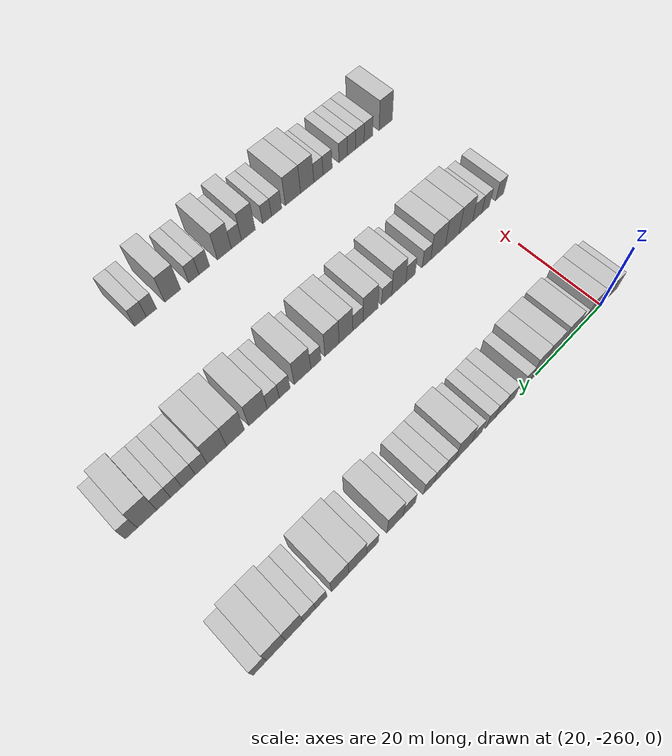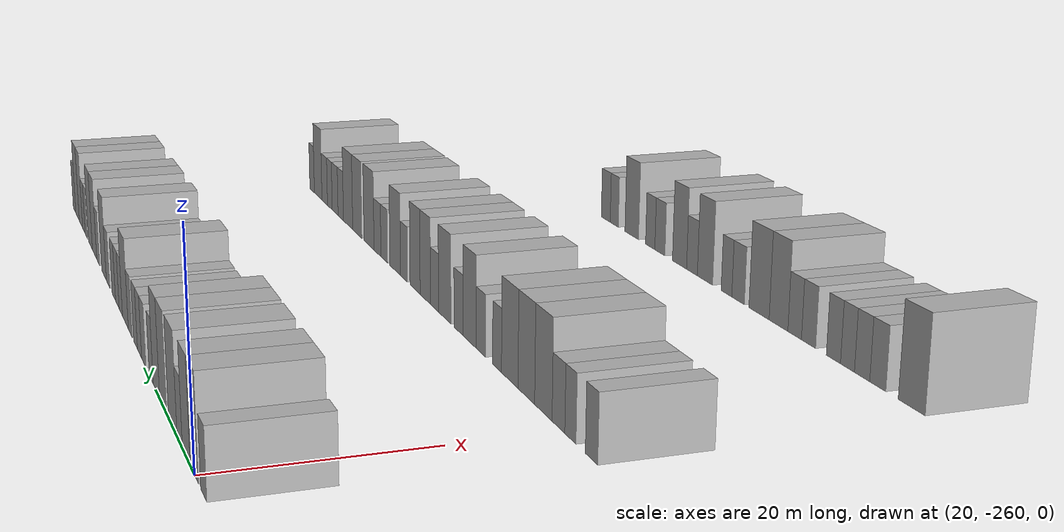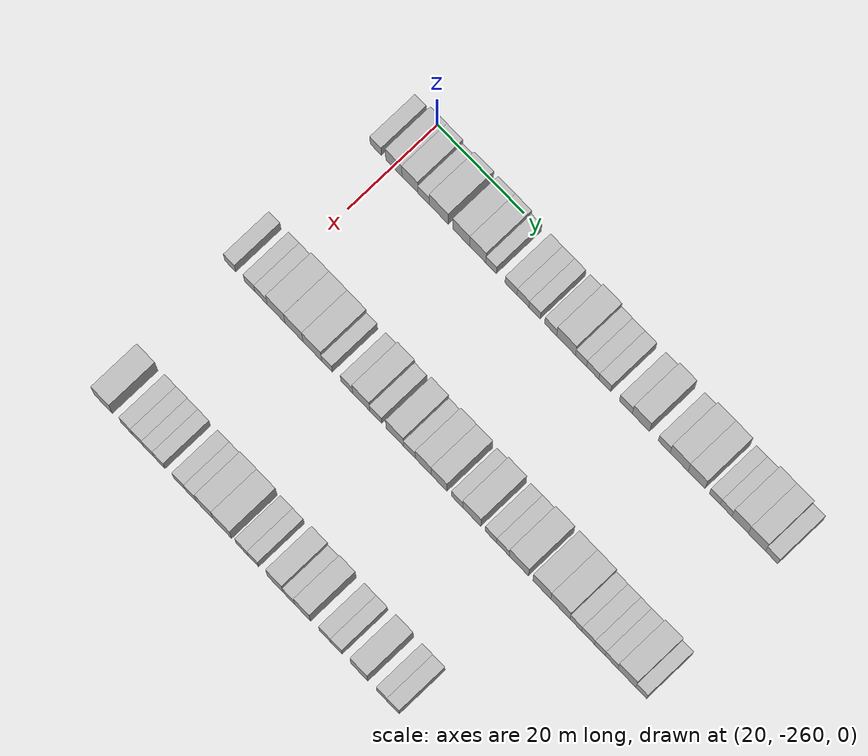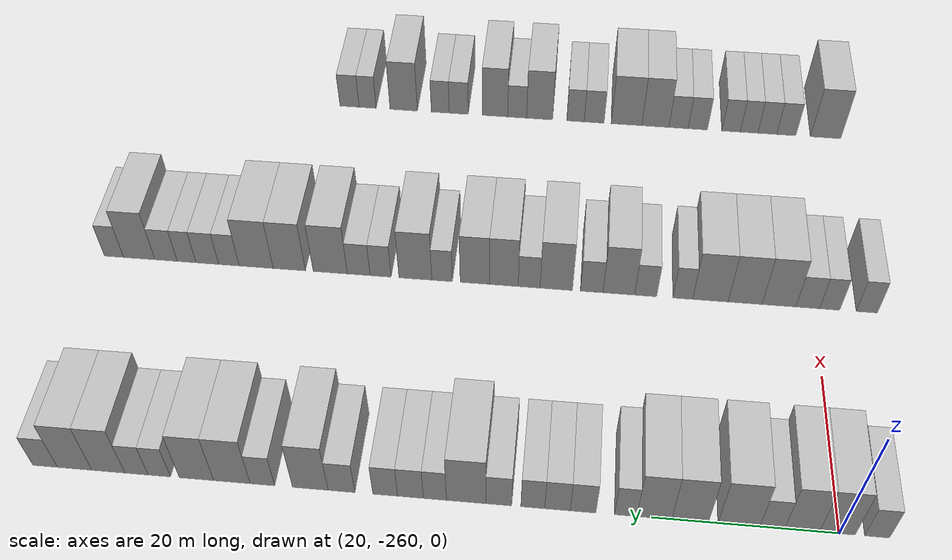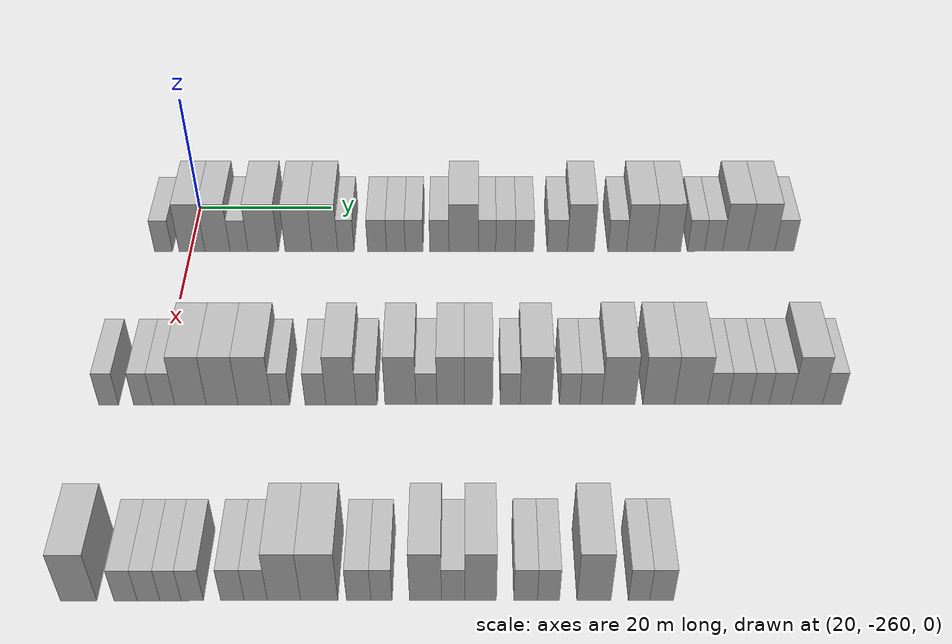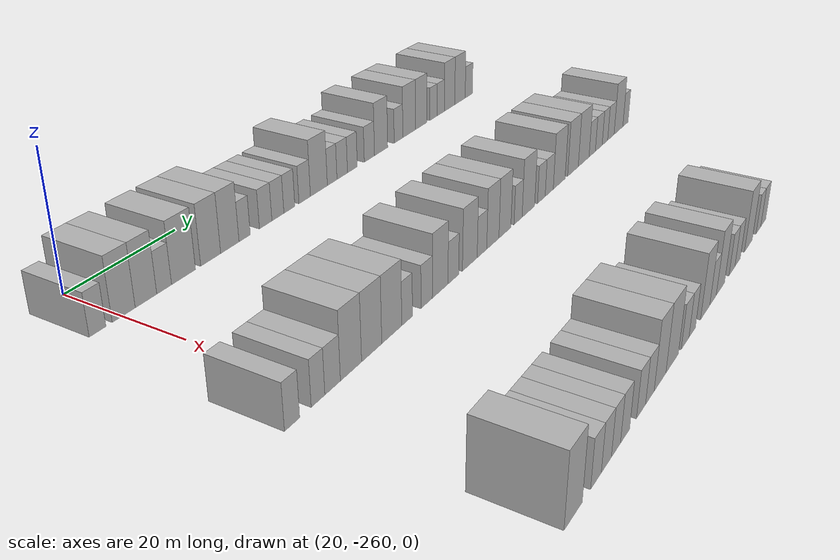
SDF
<sdf version="1.6">
 <world name="default">
  <model name="building_50">
   <static>1</static>
   <pose>25.0000 -263.9552 0 0.000000 0.000000 0.000000</pose>
   <link name="link">
    <pose>0 0 3.00 0 0 0</pose>
    <collision name="collision"><geometry><box><size>10.0000 2.6250 6.0000</size></box></geometry></collision>
    <visual name="visual">
     <cast_shadows>0</cast_shadows>
     <geometry><box><size>10.0000 2.6250 6.0000</size></box></geometry>
     <material>
      <script>
       <uri>model://HANNAS_wall/materials/scripts</uri>
       <uri>model://HANNAS_wall/materials/textures</uri>
       <name>vrc/HANNAS_wall</name>
      </script>
     </material>
    </visual>
   </link>
  </model>
  <model name="building_51">
   <static>1</static>
   <pose>25.0000 -259.7512 0 0.000000 0.000000 0.000000</pose>
   <link name="link">
    <pose>0 0 4.50 0 0 0</pose>
    <collision name="collision"><geometry><box><size>10.0000 3.7831 9.0000</size></box></geometry></collision>
    <visual name="visual">
     <cast_shadows>0</cast_shadows>
     <geometry><box><size>10.0000 3.7831 9.0000</size></box></geometry>
     <material>
      <script>
       <uri>model://HANNAS_wall/materials/scripts</uri>
       <uri>model://HANNAS_wall/materials/textures</uri>
       <name>vrc/HANNAS_wall</name>
      </script>
     </material>
    </visual>
   </link>
  </model>
  <model name="building_52">
   <static>1</static>
   <pose>25.0000 -256.0086 0 0.000000 0.000000 0.000000</pose>
   <link name="link">
    <pose>0 0 4.50 0 0 0</pose>
    <collision name="collision"><geometry><box><size>10.0000 3.7020 9.0000</size></box></geometry></collision>
    <visual name="visual">
     <cast_shadows>0</cast_shadows>
     <geometry><box><size>10.0000 3.7020 9.0000</size></box></geometry>
     <material>
      <script>
       <uri>model://HANNAS_wall/materials/scripts</uri>
       <uri>model://HANNAS_wall/materials/textures</uri>
       <name>vrc/HANNAS_wall</name>
      </script>
     </material>
    </visual>
   </link>
  </model>
  <model name="building_53">
   <static>1</static>
   <pose>25.0000 -252.8353 0 0.000000 0.000000 0.000000</pose>
   <link name="link">
    <pose>0 0 3.00 0 0 0</pose>
    <collision name="collision"><geometry><box><size>10.0000 2.6446 6.0000</size></box></geometry></collision>
    <visual name="visual">
     <cast_shadows>0</cast_shadows>
     <geometry><box><size>10.0000 2.6446 6.0000</size></box></geometry>
     <material>
      <script>
       <uri>model://HANNAS_wall/materials/scripts</uri>
       <uri>model://HANNAS_wall/materials/textures</uri>
       <name>vrc/HANNAS_wall</name>
      </script>
     </material>
    </visual>
   </link>
  </model>
  <model name="building_54">
   <static>1</static>
   <pose>25.0000 -249.2851 0 0.000000 0.000000 0.000000</pose>
   <link name="link">
    <pose>0 0 4.50 0 0 0</pose>
    <collision name="collision"><geometry><box><size>10.0000 4.4559 9.0000</size></box></geometry></collision>
    <visual name="visual">
     <cast_shadows>0</cast_shadows>
     <geometry><box><size>10.0000 4.4559 9.0000</size></box></geometry>
     <material>
      <script>
       <uri>model://HANNAS_wall/materials/scripts</uri>
       <uri>model://HANNAS_wall/materials/textures</uri>
       <name>vrc/HANNAS_wall</name>
      </script>
     </material>
    </visual>
   </link>
  </model>
  <model name="building_55">
   <static>1</static>
   <pose>25.0000 -244.0844 0 0.000000 0.000000 0.000000</pose>
   <link name="link">
    <pose>0 0 4.50 0 0 0</pose>
    <collision name="collision"><geometry><box><size>10.0000 3.9455 9.0000</size></box></geometry></collision>
    <visual name="visual">
     <cast_shadows>0</cast_shadows>
     <geometry><box><size>10.0000 3.9455 9.0000</size></box></geometry>
     <material>
      <script>
       <uri>model://HANNAS_wall/materials/scripts</uri>
       <uri>model://HANNAS_wall/materials/textures</uri>
       <name>vrc/HANNAS_wall</name>
      </script>
     </material>
    </visual>
   </link>
  </model>
  <model name="building_56">
   <static>1</static>
   <pose>25.0000 -240.2194 0 0.000000 0.000000 0.000000</pose>
   <link name="link">
    <pose>0 0 4.50 0 0 0</pose>
    <collision name="collision"><geometry><box><size>10.0000 3.7845 9.0000</size></box></geometry></collision>
    <visual name="visual">
     <cast_shadows>0</cast_shadows>
     <geometry><box><size>10.0000 3.7845 9.0000</size></box></geometry>
     <material>
      <script>
       <uri>model://HANNAS_wall/materials/scripts</uri>
       <uri>model://HANNAS_wall/materials/textures</uri>
       <name>vrc/HANNAS_wall</name>
      </script>
     </material>
    </visual>
   </link>
  </model>
  <model name="building_57">
   <static>1</static>
   <pose>25.0000 -237.1265 0 0.000000 0.000000 0.000000</pose>
   <link name="link">
    <pose>0 0 3.00 0 0 0</pose>
    <collision name="collision"><geometry><box><size>10.0000 2.4014 6.0000</size></box></geometry></collision>
    <visual name="visual">
     <cast_shadows>0</cast_shadows>
     <geometry><box><size>10.0000 2.4014 6.0000</size></box></geometry>
     <material>
      <script>
       <uri>model://HANNAS_wall/materials/scripts</uri>
       <uri>model://HANNAS_wall/materials/textures</uri>
       <name>vrc/HANNAS_wall</name>
      </script>
     </material>
    </visual>
   </link>
  </model>
  <model name="building_58">
   <static>1</static>
   <pose>25.0000 -232.5295 0 0.000000 0.000000 0.000000</pose>
   <link name="link">
    <pose>0 0 3.00 0 0 0</pose>
    <collision name="collision"><geometry><box><size>10.0000 2.7925 6.0000</size></box></geometry></collision>
    <visual name="visual">
     <cast_shadows>0</cast_shadows>
     <geometry><box><size>10.0000 2.7925 6.0000</size></box></geometry>
     <material>
      <script>
       <uri>model://HANNAS_wall/materials/scripts</uri>
       <uri>model://HANNAS_wall/materials/textures</uri>
       <name>vrc/HANNAS_wall</name>
      </script>
     </material>
    </visual>
   </link>
  </model>
  <model name="building_59">
   <static>1</static>
   <pose>25.0000 -229.7505 0 0.000000 0.000000 0.000000</pose>
   <link name="link">
    <pose>0 0 3.00 0 0 0</pose>
    <collision name="collision"><geometry><box><size>10.0000 2.7655 6.0000</size></box></geometry></collision>
    <visual name="visual">
     <cast_shadows>0</cast_shadows>
     <geometry><box><size>10.0000 2.7655 6.0000</size></box></geometry>
     <material>
      <script>
       <uri>model://HANNAS_wall/materials/scripts</uri>
       <uri>model://HANNAS_wall/materials/textures</uri>
       <name>vrc/HANNAS_wall</name>
      </script>
     </material>
    </visual>
   </link>
  </model>
  <model name="building_60">
   <static>1</static>
   <pose>25.0000 -227.0693 0 0.000000 0.000000 0.000000</pose>
   <link name="link">
    <pose>0 0 3.00 0 0 0</pose>
    <collision name="collision"><geometry><box><size>10.0000 2.5969 6.0000</size></box></geometry></collision>
    <visual name="visual">
     <cast_shadows>0</cast_shadows>
     <geometry><box><size>10.0000 2.5969 6.0000</size></box></geometry>
     <material>
      <script>
       <uri>model://HANNAS_wall/materials/scripts</uri>
       <uri>model://HANNAS_wall/materials/textures</uri>
       <name>vrc/HANNAS_wall</name>
      </script>
     </material>
    </visual>
   </link>
  </model>
  <model name="building_61">
   <static>1</static>
   <pose>25.0000 -223.3637 0 0.000000 0.000000 0.000000</pose>
   <link name="link">
    <pose>0 0 3.00 0 0 0</pose>
    <collision name="collision"><geometry><box><size>10.0000 2.8145 6.0000</size></box></geometry></collision>
    <visual name="visual">
     <cast_shadows>0</cast_shadows>
     <geometry><box><size>10.0000 2.8145 6.0000</size></box></geometry>
     <material>
      <script>
       <uri>model://HANNAS_wall/materials/scripts</uri>
       <uri>model://HANNAS_wall/materials/textures</uri>
       <name>vrc/HANNAS_wall</name>
      </script>
     </material>
    </visual>
   </link>
  </model>
  <model name="building_62">
   <static>1</static>
   <pose>25.0000 -219.7949 0 0.000000 0.000000 0.000000</pose>
   <link name="link">
    <pose>0 0 4.50 0 0 0</pose>
    <collision name="collision"><geometry><box><size>10.0000 4.3231 9.0000</size></box></geometry></collision>
    <visual name="visual">
     <cast_shadows>0</cast_shadows>
     <geometry><box><size>10.0000 4.3231 9.0000</size></box></geometry>
     <material>
      <script>
       <uri>model://HANNAS_wall/materials/scripts</uri>
       <uri>model://HANNAS_wall/materials/textures</uri>
       <name>vrc/HANNAS_wall</name>
      </script>
     </material>
    </visual>
   </link>
  </model>
  <model name="building_63">
   <static>1</static>
   <pose>25.0000 -216.3594 0 0.000000 0.000000 0.000000</pose>
   <link name="link">
    <pose>0 0 3.00 0 0 0</pose>
    <collision name="collision"><geometry><box><size>10.0000 2.5478 6.0000</size></box></geometry></collision>
    <visual name="visual">
     <cast_shadows>0</cast_shadows>
     <geometry><box><size>10.0000 2.5478 6.0000</size></box></geometry>
     <material>
      <script>
       <uri>model://HANNAS_wall/materials/scripts</uri>
       <uri>model://HANNAS_wall/materials/textures</uri>
       <name>vrc/HANNAS_wall</name>
      </script>
     </material>
    </visual>
   </link>
  </model>
  <model name="building_64">
   <static>1</static>
   <pose>25.0000 -213.6650 0 0.000000 0.000000 0.000000</pose>
   <link name="link">
    <pose>0 0 3.00 0 0 0</pose>
    <collision name="collision"><geometry><box><size>10.0000 2.8410 6.0000</size></box></geometry></collision>
    <visual name="visual">
     <cast_shadows>0</cast_shadows>
     <geometry><box><size>10.0000 2.8410 6.0000</size></box></geometry>
     <material>
      <script>
       <uri>model://HANNAS_wall/materials/scripts</uri>
       <uri>model://HANNAS_wall/materials/textures</uri>
       <name>vrc/HANNAS_wall</name>
      </script>
     </material>
    </visual>
   </link>
  </model>
  <model name="building_65">
   <static>1</static>
   <pose>25.0000 -210.8804 0 0.000000 0.000000 0.000000</pose>
   <link name="link">
    <pose>0 0 3.00 0 0 0</pose>
    <collision name="collision"><geometry><box><size>10.0000 2.7284 6.0000</size></box></geometry></collision>
    <visual name="visual">
     <cast_shadows>0</cast_shadows>
     <geometry><box><size>10.0000 2.7284 6.0000</size></box></geometry>
     <material>
      <script>
       <uri>model://HANNAS_wall/materials/scripts</uri>
       <uri>model://HANNAS_wall/materials/textures</uri>
       <name>vrc/HANNAS_wall</name>
      </script>
     </material>
    </visual>
   </link>
  </model>
  <model name="building_66">
   <static>1</static>
   <pose>25.0000 -206.0302 0 0.000000 0.000000 0.000000</pose>
   <link name="link">
    <pose>0 0 3.00 0 0 0</pose>
    <collision name="collision"><geometry><box><size>10.0000 2.9719 6.0000</size></box></geometry></collision>
    <visual name="visual">
     <cast_shadows>0</cast_shadows>
     <geometry><box><size>10.0000 2.9719 6.0000</size></box></geometry>
     <material>
      <script>
       <uri>model://HANNAS_wall/materials/scripts</uri>
       <uri>model://HANNAS_wall/materials/textures</uri>
       <name>vrc/HANNAS_wall</name>
      </script>
     </material>
    </visual>
   </link>
  </model>
  <model name="building_67">
   <static>1</static>
   <pose>25.0000 -202.5640 0 0.000000 0.000000 0.000000</pose>
   <link name="link">
    <pose>0 0 4.50 0 0 0</pose>
    <collision name="collision"><geometry><box><size>10.0000 3.9606 9.0000</size></box></geometry></collision>
    <visual name="visual">
     <cast_shadows>0</cast_shadows>
     <geometry><box><size>10.0000 3.9606 9.0000</size></box></geometry>
     <material>
      <script>
       <uri>model://HANNAS_wall/materials/scripts</uri>
       <uri>model://HANNAS_wall/materials/textures</uri>
       <name>vrc/HANNAS_wall</name>
      </script>
     </material>
    </visual>
   </link>
  </model>
  <model name="building_68">
   <static>1</static>
   <pose>25.0000 -197.2149 0 0.000000 0.000000 0.000000</pose>
   <link name="link">
    <pose>0 0 3.00 0 0 0</pose>
    <collision name="collision"><geometry><box><size>10.0000 2.7376 6.0000</size></box></geometry></collision>
    <visual name="visual">
     <cast_shadows>0</cast_shadows>
     <geometry><box><size>10.0000 2.7376 6.0000</size></box></geometry>
     <material>
      <script>
       <uri>model://HANNAS_wall/materials/scripts</uri>
       <uri>model://HANNAS_wall/materials/textures</uri>
       <name>vrc/HANNAS_wall</name>
      </script>
     </material>
    </visual>
   </link>
  </model>
  <model name="building_69">
   <static>1</static>
   <pose>25.0000 -193.7944 0 0.000000 0.000000 0.000000</pose>
   <link name="link">
    <pose>0 0 4.50 0 0 0</pose>
    <collision name="collision"><geometry><box><size>10.0000 4.1033 9.0000</size></box></geometry></collision>
    <visual name="visual">
     <cast_shadows>0</cast_shadows>
     <geometry><box><size>10.0000 4.1033 9.0000</size></box></geometry>
     <material>
      <script>
       <uri>model://HANNAS_wall/materials/scripts</uri>
       <uri>model://HANNAS_wall/materials/textures</uri>
       <name>vrc/HANNAS_wall</name>
      </script>
     </material>
    </visual>
   </link>
  </model>
  <model name="building_70">
   <static>1</static>
   <pose>25.0000 -189.8073 0 0.000000 0.000000 0.000000</pose>
   <link name="link">
    <pose>0 0 4.50 0 0 0</pose>
    <collision name="collision"><geometry><box><size>10.0000 3.8709 9.0000</size></box></geometry></collision>
    <visual name="visual">
     <cast_shadows>0</cast_shadows>
     <geometry><box><size>10.0000 3.8709 9.0000</size></box></geometry>
     <material>
      <script>
       <uri>model://HANNAS_wall/materials/scripts</uri>
       <uri>model://HANNAS_wall/materials/textures</uri>
       <name>vrc/HANNAS_wall</name>
      </script>
     </material>
    </visual>
   </link>
  </model>
  <model name="building_71">
   <static>1</static>
   <pose>25.0000 -185.6113 0 0.000000 0.000000 0.000000</pose>
   <link name="link">
    <pose>0 0 3.00 0 0 0</pose>
    <collision name="collision"><geometry><box><size>10.0000 2.5211 6.0000</size></box></geometry></collision>
    <visual name="visual">
     <cast_shadows>0</cast_shadows>
     <geometry><box><size>10.0000 2.5211 6.0000</size></box></geometry>
     <material>
      <script>
       <uri>model://HANNAS_wall/materials/scripts</uri>
       <uri>model://HANNAS_wall/materials/textures</uri>
       <name>vrc/HANNAS_wall</name>
      </script>
     </material>
    </visual>
   </link>
  </model>
  <model name="building_72">
   <static>1</static>
   <pose>25.0000 -183.0315 0 0.000000 0.000000 0.000000</pose>
   <link name="link">
    <pose>0 0 3.00 0 0 0</pose>
    <collision name="collision"><geometry><box><size>10.0000 2.6385 6.0000</size></box></geometry></collision>
    <visual name="visual">
     <cast_shadows>0</cast_shadows>
     <geometry><box><size>10.0000 2.6385 6.0000</size></box></geometry>
     <material>
      <script>
       <uri>model://HANNAS_wall/materials/scripts</uri>
       <uri>model://HANNAS_wall/materials/textures</uri>
       <name>vrc/HANNAS_wall</name>
      </script>
     </material>
    </visual>
   </link>
  </model>
  <model name="building_73">
   <static>1</static>
   <pose>25.0000 -179.8330 0 0.000000 0.000000 0.000000</pose>
   <link name="link">
    <pose>0 0 4.50 0 0 0</pose>
    <collision name="collision"><geometry><box><size>10.0000 3.7586 9.0000</size></box></geometry></collision>
    <visual name="visual">
     <cast_shadows>0</cast_shadows>
     <geometry><box><size>10.0000 3.7586 9.0000</size></box></geometry>
     <material>
      <script>
       <uri>model://HANNAS_wall/materials/scripts</uri>
       <uri>model://HANNAS_wall/materials/textures</uri>
       <name>vrc/HANNAS_wall</name>
      </script>
     </material>
    </visual>
   </link>
  </model>
  <model name="building_74">
   <static>1</static>
   <pose>25.0000 -175.9824 0 0.000000 0.000000 0.000000</pose>
   <link name="link">
    <pose>0 0 4.50 0 0 0</pose>
    <collision name="collision"><geometry><box><size>10.0000 3.9426 9.0000</size></box></geometry></collision>
    <visual name="visual">
     <cast_shadows>0</cast_shadows>
     <geometry><box><size>10.0000 3.9426 9.0000</size></box></geometry>
     <material>
      <script>
       <uri>model://HANNAS_wall/materials/scripts</uri>
       <uri>model://HANNAS_wall/materials/textures</uri>
       <name>vrc/HANNAS_wall</name>
      </script>
     </material>
    </visual>
   </link>
  </model>
  <model name="building_75">
   <static>1</static>
   <pose>25.0000 -172.6080 0 0.000000 0.000000 0.000000</pose>
   <link name="link">
    <pose>0 0 3.00 0 0 0</pose>
    <collision name="collision"><geometry><box><size>10.0000 2.8060 6.0000</size></box></geometry></collision>
    <visual name="visual">
     <cast_shadows>0</cast_shadows>
     <geometry><box><size>10.0000 2.8060 6.0000</size></box></geometry>
     <material>
      <script>
       <uri>model://HANNAS_wall/materials/scripts</uri>
       <uri>model://HANNAS_wall/materials/textures</uri>
       <name>vrc/HANNAS_wall</name>
      </script>
     </material>
    </visual>
   </link>
  </model>
  <model name="building_285">
   <static>1</static>
   <pose>55.0000 -266.2791 0 0.000000 0.000000 0.000000</pose>
   <link name="link">
    <pose>0 0 3.00 0 0 0</pose>
    <collision name="collision"><geometry><box><size>10.0000 2.5727 6.0000</size></box></geometry></collision>
    <visual name="visual">
     <cast_shadows>0</cast_shadows>
     <geometry><box><size>10.0000 2.5727 6.0000</size></box></geometry>
     <material>
      <script>
       <uri>model://HANNAS_wall/materials/scripts</uri>
       <uri>model://HANNAS_wall/materials/textures</uri>
       <name>vrc/HANNAS_wall</name>
      </script>
     </material>
    </visual>
   </link>
  </model>
  <model name="building_286">
   <static>1</static>
   <pose>55.0000 -261.7659 0 0.000000 0.000000 0.000000</pose>
   <link name="link">
    <pose>0 0 3.00 0 0 0</pose>
    <collision name="collision"><geometry><box><size>10.0000 2.4538 6.0000</size></box></geometry></collision>
    <visual name="visual">
     <cast_shadows>0</cast_shadows>
     <geometry><box><size>10.0000 2.4538 6.0000</size></box></geometry>
     <material>
      <script>
       <uri>model://HANNAS_wall/materials/scripts</uri>
       <uri>model://HANNAS_wall/materials/textures</uri>
       <name>vrc/HANNAS_wall</name>
      </script>
     </material>
    </visual>
   </link>
  </model>
  <model name="building_287">
   <static>1</static>
   <pose>55.0000 -259.0863 0 0.000000 0.000000 0.000000</pose>
   <link name="link">
    <pose>0 0 3.00 0 0 0</pose>
    <collision name="collision"><geometry><box><size>10.0000 2.9054 6.0000</size></box></geometry></collision>
    <visual name="visual">
     <cast_shadows>0</cast_shadows>
     <geometry><box><size>10.0000 2.9054 6.0000</size></box></geometry>
     <material>
      <script>
       <uri>model://HANNAS_wall/materials/scripts</uri>
       <uri>model://HANNAS_wall/materials/textures</uri>
       <name>vrc/HANNAS_wall</name>
      </script>
     </material>
    </visual>
   </link>
  </model>
  <model name="building_288">
   <static>1</static>
   <pose>55.0000 -255.5618 0 0.000000 0.000000 0.000000</pose>
   <link name="link">
    <pose>0 0 4.50 0 0 0</pose>
    <collision name="collision"><geometry><box><size>10.0000 4.1436 9.0000</size></box></geometry></collision>
    <visual name="visual">
     <cast_shadows>0</cast_shadows>
     <geometry><box><size>10.0000 4.1436 9.0000</size></box></geometry>
     <material>
      <script>
       <uri>model://HANNAS_wall/materials/scripts</uri>
       <uri>model://HANNAS_wall/materials/textures</uri>
       <name>vrc/HANNAS_wall</name>
      </script>
     </material>
    </visual>
   </link>
  </model>
  <model name="building_289">
   <static>1</static>
   <pose>55.0000 -251.4029 0 0.000000 0.000000 0.000000</pose>
   <link name="link">
    <pose>0 0 4.50 0 0 0</pose>
    <collision name="collision"><geometry><box><size>10.0000 4.1741 9.0000</size></box></geometry></collision>
    <visual name="visual">
     <cast_shadows>0</cast_shadows>
     <geometry><box><size>10.0000 4.1741 9.0000</size></box></geometry>
     <material>
      <script>
       <uri>model://HANNAS_wall/materials/scripts</uri>
       <uri>model://HANNAS_wall/materials/textures</uri>
       <name>vrc/HANNAS_wall</name>
      </script>
     </material>
    </visual>
   </link>
  </model>
  <model name="building_290">
   <static>1</static>
   <pose>55.0000 -247.1328 0 0.000000 0.000000 0.000000</pose>
   <link name="link">
    <pose>0 0 4.50 0 0 0</pose>
    <collision name="collision"><geometry><box><size>10.0000 4.3661 9.0000</size></box></geometry></collision>
    <visual name="visual">
     <cast_shadows>0</cast_shadows>
     <geometry><box><size>10.0000 4.3661 9.0000</size></box></geometry>
     <material>
      <script>
       <uri>model://HANNAS_wall/materials/scripts</uri>
       <uri>model://HANNAS_wall/materials/textures</uri>
       <name>vrc/HANNAS_wall</name>
      </script>
     </material>
    </visual>
   </link>
  </model>
  <model name="building_291">
   <static>1</static>
   <pose>55.0000 -243.7296 0 0.000000 0.000000 0.000000</pose>
   <link name="link">
    <pose>0 0 3.00 0 0 0</pose>
    <collision name="collision"><geometry><box><size>10.0000 2.4403 6.0000</size></box></geometry></collision>
    <visual name="visual">
     <cast_shadows>0</cast_shadows>
     <geometry><box><size>10.0000 2.4403 6.0000</size></box></geometry>
     <material>
      <script>
       <uri>model://HANNAS_wall/materials/scripts</uri>
       <uri>model://HANNAS_wall/materials/textures</uri>
       <name>vrc/HANNAS_wall</name>
      </script>
     </material>
    </visual>
   </link>
  </model>
  <model name="building_292">
   <static>1</static>
   <pose>55.0000 -239.1427 0 0.000000 0.000000 0.000000</pose>
   <link name="link">
    <pose>0 0 3.00 0 0 0</pose>
    <collision name="collision"><geometry><box><size>10.0000 2.7336 6.0000</size></box></geometry></collision>
    <visual name="visual">
     <cast_shadows>0</cast_shadows>
     <geometry><box><size>10.0000 2.7336 6.0000</size></box></geometry>
     <material>
      <script>
       <uri>model://HANNAS_wall/materials/scripts</uri>
       <uri>model://HANNAS_wall/materials/textures</uri>
       <name>vrc/HANNAS_wall</name>
      </script>
     </material>
    </visual>
   </link>
  </model>
  <model name="building_293">
   <static>1</static>
   <pose>55.0000 -235.8047 0 0.000000 0.000000 0.000000</pose>
   <link name="link">
    <pose>0 0 4.50 0 0 0</pose>
    <collision name="collision"><geometry><box><size>10.0000 3.9424 9.0000</size></box></geometry></collision>
    <visual name="visual">
     <cast_shadows>0</cast_shadows>
     <geometry><box><size>10.0000 3.9424 9.0000</size></box></geometry>
     <material>
      <script>
       <uri>model://HANNAS_wall/materials/scripts</uri>
       <uri>model://HANNAS_wall/materials/textures</uri>
       <name>vrc/HANNAS_wall</name>
      </script>
     </material>
    </visual>
   </link>
  </model>
  <model name="building_294">
   <static>1</static>
   <pose>55.0000 -232.4324 0 0.000000 0.000000 0.000000</pose>
   <link name="link">
    <pose>0 0 3.00 0 0 0</pose>
    <collision name="collision"><geometry><box><size>10.0000 2.8023 6.0000</size></box></geometry></collision>
    <visual name="visual">
     <cast_shadows>0</cast_shadows>
     <geometry><box><size>10.0000 2.8023 6.0000</size></box></geometry>
     <material>
      <script>
       <uri>model://HANNAS_wall/materials/scripts</uri>
       <uri>model://HANNAS_wall/materials/textures</uri>
       <name>vrc/HANNAS_wall</name>
      </script>
     </material>
    </visual>
   </link>
  </model>
  <model name="building_295">
   <static>1</static>
   <pose>55.0000 -228.0049 0 0.000000 0.000000 0.000000</pose>
   <link name="link">
    <pose>0 0 4.50 0 0 0</pose>
    <collision name="collision"><geometry><box><size>10.0000 4.0526 9.0000</size></box></geometry></collision>
    <visual name="visual">
     <cast_shadows>0</cast_shadows>
     <geometry><box><size>10.0000 4.0526 9.0000</size></box></geometry>
     <material>
      <script>
       <uri>model://HANNAS_wall/materials/scripts</uri>
       <uri>model://HANNAS_wall/materials/textures</uri>
       <name>vrc/HANNAS_wall</name>
      </script>
     </material>
    </visual>
   </link>
  </model>
  <model name="building_296">
   <static>1</static>
   <pose>55.0000 -224.6111 0 0.000000 0.000000 0.000000</pose>
   <link name="link">
    <pose>0 0 3.00 0 0 0</pose>
    <collision name="collision"><geometry><box><size>10.0000 2.7350 6.0000</size></box></geometry></collision>
    <visual name="visual">
     <cast_shadows>0</cast_shadows>
     <geometry><box><size>10.0000 2.7350 6.0000</size></box></geometry>
     <material>
      <script>
       <uri>model://HANNAS_wall/materials/scripts</uri>
       <uri>model://HANNAS_wall/materials/textures</uri>
       <name>vrc/HANNAS_wall</name>
      </script>
     </material>
    </visual>
   </link>
  </model>
  <model name="building_297">
   <static>1</static>
   <pose>55.0000 -221.4361 0 0.000000 0.000000 0.000000</pose>
   <link name="link">
    <pose>0 0 4.50 0 0 0</pose>
    <collision name="collision"><geometry><box><size>10.0000 3.6151 9.0000</size></box></geometry></collision>
    <visual name="visual">
     <cast_shadows>0</cast_shadows>
     <geometry><box><size>10.0000 3.6151 9.0000</size></box></geometry>
     <material>
      <script>
       <uri>model://HANNAS_wall/materials/scripts</uri>
       <uri>model://HANNAS_wall/materials/textures</uri>
       <name>vrc/HANNAS_wall</name>
      </script>
     </material>
    </visual>
   </link>
  </model>
  <model name="building_298">
   <static>1</static>
   <pose>55.0000 -217.7874 0 0.000000 0.000000 0.000000</pose>
   <link name="link">
    <pose>0 0 4.50 0 0 0</pose>
    <collision name="collision"><geometry><box><size>10.0000 3.6823 9.0000</size></box></geometry></collision>
    <visual name="visual">
     <cast_shadows>0</cast_shadows>
     <geometry><box><size>10.0000 3.6823 9.0000</size></box></geometry>
     <material>
      <script>
       <uri>model://HANNAS_wall/materials/scripts</uri>
       <uri>model://HANNAS_wall/materials/textures</uri>
       <name>vrc/HANNAS_wall</name>
      </script>
     </material>
    </visual>
   </link>
  </model>
  <model name="building_299">
   <static>1</static>
   <pose>55.0000 -213.6459 0 0.000000 0.000000 0.000000</pose>
   <link name="link">
    <pose>0 0 3.00 0 0 0</pose>
    <collision name="collision"><geometry><box><size>10.0000 2.6006 6.0000</size></box></geometry></collision>
    <visual name="visual">
     <cast_shadows>0</cast_shadows>
     <geometry><box><size>10.0000 2.6006 6.0000</size></box></geometry>
     <material>
      <script>
       <uri>model://HANNAS_wall/materials/scripts</uri>
       <uri>model://HANNAS_wall/materials/textures</uri>
       <name>vrc/HANNAS_wall</name>
      </script>
     </material>
    </visual>
   </link>
  </model>
  <model name="building_300">
   <static>1</static>
   <pose>55.0000 -210.2622 0 0.000000 0.000000 0.000000</pose>
   <link name="link">
    <pose>0 0 4.50 0 0 0</pose>
    <collision name="collision"><geometry><box><size>10.0000 4.1669 9.0000</size></box></geometry></collision>
    <visual name="visual">
     <cast_shadows>0</cast_shadows>
     <geometry><box><size>10.0000 4.1669 9.0000</size></box></geometry>
     <material>
      <script>
       <uri>model://HANNAS_wall/materials/scripts</uri>
       <uri>model://HANNAS_wall/materials/textures</uri>
       <name>vrc/HANNAS_wall</name>
      </script>
     </material>
    </visual>
   </link>
  </model>
  <model name="building_301">
   <static>1</static>
   <pose>55.0000 -205.8451 0 0.000000 0.000000 0.000000</pose>
   <link name="link">
    <pose>0 0 3.00 0 0 0</pose>
    <collision name="collision"><geometry><box><size>10.0000 2.6672 6.0000</size></box></geometry></collision>
    <visual name="visual">
     <cast_shadows>0</cast_shadows>
     <geometry><box><size>10.0000 2.6672 6.0000</size></box></geometry>
     <material>
      <script>
       <uri>model://HANNAS_wall/materials/scripts</uri>
       <uri>model://HANNAS_wall/materials/textures</uri>
       <name>vrc/HANNAS_wall</name>
      </script>
     </material>
    </visual>
   </link>
  </model>
  <model name="building_302">
   <static>1</static>
   <pose>55.0000 -203.0615 0 0.000000 0.000000 0.000000</pose>
   <link name="link">
    <pose>0 0 3.00 0 0 0</pose>
    <collision name="collision"><geometry><box><size>10.0000 2.9002 6.0000</size></box></geometry></collision>
    <visual name="visual">
     <cast_shadows>0</cast_shadows>
     <geometry><box><size>10.0000 2.9002 6.0000</size></box></geometry>
     <material>
      <script>
       <uri>model://HANNAS_wall/materials/scripts</uri>
       <uri>model://HANNAS_wall/materials/textures</uri>
       <name>vrc/HANNAS_wall</name>
      </script>
     </material>
    </visual>
   </link>
  </model>
  <model name="building_303">
   <static>1</static>
   <pose>55.0000 -199.4215 0 0.000000 0.000000 0.000000</pose>
   <link name="link">
    <pose>0 0 4.50 0 0 0</pose>
    <collision name="collision"><geometry><box><size>10.0000 4.3798 9.0000</size></box></geometry></collision>
    <visual name="visual">
     <cast_shadows>0</cast_shadows>
     <geometry><box><size>10.0000 4.3798 9.0000</size></box></geometry>
     <material>
      <script>
       <uri>model://HANNAS_wall/materials/scripts</uri>
       <uri>model://HANNAS_wall/materials/textures</uri>
       <name>vrc/HANNAS_wall</name>
      </script>
     </material>
    </visual>
   </link>
  </model>
  <model name="building_304">
   <static>1</static>
   <pose>55.0000 -194.1590 0 0.000000 0.000000 0.000000</pose>
   <link name="link">
    <pose>0 0 4.50 0 0 0</pose>
    <collision name="collision"><geometry><box><size>10.0000 4.1452 9.0000</size></box></geometry></collision>
    <visual name="visual">
     <cast_shadows>0</cast_shadows>
     <geometry><box><size>10.0000 4.1452 9.0000</size></box></geometry>
     <material>
      <script>
       <uri>model://HANNAS_wall/materials/scripts</uri>
       <uri>model://HANNAS_wall/materials/textures</uri>
       <name>vrc/HANNAS_wall</name>
      </script>
     </material>
    </visual>
   </link>
  </model>
  <model name="building_305">
   <static>1</static>
   <pose>55.0000 -189.8931 0 0.000000 0.000000 0.000000</pose>
   <link name="link">
    <pose>0 0 4.50 0 0 0</pose>
    <collision name="collision"><geometry><box><size>10.0000 4.3866 9.0000</size></box></geometry></collision>
    <visual name="visual">
     <cast_shadows>0</cast_shadows>
     <geometry><box><size>10.0000 4.3866 9.0000</size></box></geometry>
     <material>
      <script>
       <uri>model://HANNAS_wall/materials/scripts</uri>
       <uri>model://HANNAS_wall/materials/textures</uri>
       <name>vrc/HANNAS_wall</name>
      </script>
     </material>
    </visual>
   </link>
  </model>
  <model name="building_306">
   <static>1</static>
   <pose>55.0000 -186.3728 0 0.000000 0.000000 0.000000</pose>
   <link name="link">
    <pose>0 0 3.00 0 0 0</pose>
    <collision name="collision"><geometry><box><size>10.0000 2.6541 6.0000</size></box></geometry></collision>
    <visual name="visual">
     <cast_shadows>0</cast_shadows>
     <geometry><box><size>10.0000 2.6541 6.0000</size></box></geometry>
     <material>
      <script>
       <uri>model://HANNAS_wall/materials/scripts</uri>
       <uri>model://HANNAS_wall/materials/textures</uri>
       <name>vrc/HANNAS_wall</name>
      </script>
     </material>
    </visual>
   </link>
  </model>
  <model name="building_307">
   <static>1</static>
   <pose>55.0000 -183.5766 0 0.000000 0.000000 0.000000</pose>
   <link name="link">
    <pose>0 0 3.00 0 0 0</pose>
    <collision name="collision"><geometry><box><size>10.0000 2.9383 6.0000</size></box></geometry></collision>
    <visual name="visual">
     <cast_shadows>0</cast_shadows>
     <geometry><box><size>10.0000 2.9383 6.0000</size></box></geometry>
     <material>
      <script>
       <uri>model://HANNAS_wall/materials/scripts</uri>
       <uri>model://HANNAS_wall/materials/textures</uri>
       <name>vrc/HANNAS_wall</name>
      </script>
     </material>
    </visual>
   </link>
  </model>
  <model name="building_308">
   <static>1</static>
   <pose>55.0000 -180.8882 0 0.000000 0.000000 0.000000</pose>
   <link name="link">
    <pose>0 0 3.00 0 0 0</pose>
    <collision name="collision"><geometry><box><size>10.0000 2.4384 6.0000</size></box></geometry></collision>
    <visual name="visual">
     <cast_shadows>0</cast_shadows>
     <geometry><box><size>10.0000 2.4384 6.0000</size></box></geometry>
     <material>
      <script>
       <uri>model://HANNAS_wall/materials/scripts</uri>
       <uri>model://HANNAS_wall/materials/textures</uri>
       <name>vrc/HANNAS_wall</name>
      </script>
     </material>
    </visual>
   </link>
  </model>
  <model name="building_309">
   <static>1</static>
   <pose>55.0000 -178.2199 0 0.000000 0.000000 0.000000</pose>
   <link name="link">
    <pose>0 0 3.00 0 0 0</pose>
    <collision name="collision"><geometry><box><size>10.0000 2.8982 6.0000</size></box></geometry></collision>
    <visual name="visual">
     <cast_shadows>0</cast_shadows>
     <geometry><box><size>10.0000 2.8982 6.0000</size></box></geometry>
     <material>
      <script>
       <uri>model://HANNAS_wall/materials/scripts</uri>
       <uri>model://HANNAS_wall/materials/textures</uri>
       <name>vrc/HANNAS_wall</name>
      </script>
     </material>
    </visual>
   </link>
  </model>
  <model name="building_310">
   <static>1</static>
   <pose>55.0000 -174.7250 0 0.000000 0.000000 0.000000</pose>
   <link name="link">
    <pose>0 0 4.50 0 0 0</pose>
    <collision name="collision"><geometry><box><size>10.0000 4.0916 9.0000</size></box></geometry></collision>
    <visual name="visual">
     <cast_shadows>0</cast_shadows>
     <geometry><box><size>10.0000 4.0916 9.0000</size></box></geometry>
     <material>
      <script>
       <uri>model://HANNAS_wall/materials/scripts</uri>
       <uri>model://HANNAS_wall/materials/textures</uri>
       <name>vrc/HANNAS_wall</name>
      </script>
     </material>
    </visual>
   </link>
  </model>
  <model name="building_311">
   <static>1</static>
   <pose>55.0000 -171.4237 0 0.000000 0.000000 0.000000</pose>
   <link name="link">
    <pose>0 0 3.00 0 0 0</pose>
    <collision name="collision"><geometry><box><size>10.0000 2.5111 6.0000</size></box></geometry></collision>
    <visual name="visual">
     <cast_shadows>0</cast_shadows>
     <geometry><box><size>10.0000 2.5111 6.0000</size></box></geometry>
     <material>
      <script>
       <uri>model://HANNAS_wall/materials/scripts</uri>
       <uri>model://HANNAS_wall/materials/textures</uri>
       <name>vrc/HANNAS_wall</name>
      </script>
     </material>
    </visual>
   </link>
  </model>
  <model name="building_514">
   <static>1</static>
   <pose>85.0000 -263.9979 0 0.000000 0.000000 0.000000</pose>
   <link name="link">
    <pose>0 0 4.50 0 0 0</pose>
    <collision name="collision"><geometry><box><size>10.0000 4.1760 9.0000</size></box></geometry></collision>
    <visual name="visual">
     <cast_shadows>0</cast_shadows>
     <geometry><box><size>10.0000 4.1760 9.0000</size></box></geometry>
     <material>
      <script>
       <uri>model://HANNAS_wall/materials/scripts</uri>
       <uri>model://HANNAS_wall/materials/textures</uri>
       <name>vrc/HANNAS_wall</name>
      </script>
     </material>
    </visual>
   </link>
  </model>
  <model name="building_515">
   <static>1</static>
   <pose>85.0000 -258.5800 0 0.000000 0.000000 0.000000</pose>
   <link name="link">
    <pose>0 0 3.00 0 0 0</pose>
    <collision name="collision"><geometry><box><size>10.0000 2.6596 6.0000</size></box></geometry></collision>
    <visual name="visual">
     <cast_shadows>0</cast_shadows>
     <geometry><box><size>10.0000 2.6596 6.0000</size></box></geometry>
     <material>
      <script>
       <uri>model://HANNAS_wall/materials/scripts</uri>
       <uri>model://HANNAS_wall/materials/textures</uri>
       <name>vrc/HANNAS_wall</name>
      </script>
     </material>
    </visual>
   </link>
  </model>
  <model name="building_516">
   <static>1</static>
   <pose>85.0000 -255.9453 0 0.000000 0.000000 0.000000</pose>
   <link name="link">
    <pose>0 0 3.00 0 0 0</pose>
    <collision name="collision"><geometry><box><size>10.0000 2.6098 6.0000</size></box></geometry></collision>
    <visual name="visual">
     <cast_shadows>0</cast_shadows>
     <geometry><box><size>10.0000 2.6098 6.0000</size></box></geometry>
     <material>
      <script>
       <uri>model://HANNAS_wall/materials/scripts</uri>
       <uri>model://HANNAS_wall/materials/textures</uri>
       <name>vrc/HANNAS_wall</name>
      </script>
     </material>
    </visual>
   </link>
  </model>
  <model name="building_517">
   <static>1</static>
   <pose>85.0000 -253.4149 0 0.000000 0.000000 0.000000</pose>
   <link name="link">
    <pose>0 0 3.00 0 0 0</pose>
    <collision name="collision"><geometry><box><size>10.0000 2.4509 6.0000</size></box></geometry></collision>
    <visual name="visual">
     <cast_shadows>0</cast_shadows>
     <geometry><box><size>10.0000 2.4509 6.0000</size></box></geometry>
     <material>
      <script>
       <uri>model://HANNAS_wall/materials/scripts</uri>
       <uri>model://HANNAS_wall/materials/textures</uri>
       <name>vrc/HANNAS_wall</name>
      </script>
     </material>
    </visual>
   </link>
  </model>
  <model name="building_518">
   <static>1</static>
   <pose>85.0000 -250.9093 0 0.000000 0.000000 0.000000</pose>
   <link name="link">
    <pose>0 0 3.00 0 0 0</pose>
    <collision name="collision"><geometry><box><size>10.0000 2.5602 6.0000</size></box></geometry></collision>
    <visual name="visual">
     <cast_shadows>0</cast_shadows>
     <geometry><box><size>10.0000 2.5602 6.0000</size></box></geometry>
     <material>
      <script>
       <uri>model://HANNAS_wall/materials/scripts</uri>
       <uri>model://HANNAS_wall/materials/textures</uri>
       <name>vrc/HANNAS_wall</name>
      </script>
     </material>
    </visual>
   </link>
  </model>
  <model name="building_519">
   <static>1</static>
   <pose>85.0000 -246.2774 0 0.000000 0.000000 0.000000</pose>
   <link name="link">
    <pose>0 0 3.00 0 0 0</pose>
    <collision name="collision"><geometry><box><size>10.0000 2.7036 6.0000</size></box></geometry></collision>
    <visual name="visual">
     <cast_shadows>0</cast_shadows>
     <geometry><box><size>10.0000 2.7036 6.0000</size></box></geometry>
     <material>
      <script>
       <uri>model://HANNAS_wall/materials/scripts</uri>
       <uri>model://HANNAS_wall/materials/textures</uri>
       <name>vrc/HANNAS_wall</name>
      </script>
     </material>
    </visual>
   </link>
  </model>
  <model name="building_520">
   <static>1</static>
   <pose>85.0000 -243.5905 0 0.000000 0.000000 0.000000</pose>
   <link name="link">
    <pose>0 0 3.00 0 0 0</pose>
    <collision name="collision"><geometry><box><size>10.0000 2.6703 6.0000</size></box></geometry></collision>
    <visual name="visual">
     <cast_shadows>0</cast_shadows>
     <geometry><box><size>10.0000 2.6703 6.0000</size></box></geometry>
     <material>
      <script>
       <uri>model://HANNAS_wall/materials/scripts</uri>
       <uri>model://HANNAS_wall/materials/textures</uri>
       <name>vrc/HANNAS_wall</name>
      </script>
     </material>
    </visual>
   </link>
  </model>
  <model name="building_521">
   <static>1</static>
   <pose>85.0000 -240.3454 0 0.000000 0.000000 0.000000</pose>
   <link name="link">
    <pose>0 0 4.50 0 0 0</pose>
    <collision name="collision"><geometry><box><size>10.0000 3.8198 9.0000</size></box></geometry></collision>
    <visual name="visual">
     <cast_shadows>0</cast_shadows>
     <geometry><box><size>10.0000 3.8198 9.0000</size></box></geometry>
     <material>
      <script>
       <uri>model://HANNAS_wall/materials/scripts</uri>
       <uri>model://HANNAS_wall/materials/textures</uri>
       <name>vrc/HANNAS_wall</name>
      </script>
     </material>
    </visual>
   </link>
  </model>
  <model name="building_522">
   <static>1</static>
   <pose>85.0000 -236.2867 0 0.000000 0.000000 0.000000</pose>
   <link name="link">
    <pose>0 0 4.50 0 0 0</pose>
    <collision name="collision"><geometry><box><size>10.0000 4.2977 9.0000</size></box></geometry></collision>
    <visual name="visual">
     <cast_shadows>0</cast_shadows>
     <geometry><box><size>10.0000 4.2977 9.0000</size></box></geometry>
     <material>
      <script>
       <uri>model://HANNAS_wall/materials/scripts</uri>
       <uri>model://HANNAS_wall/materials/textures</uri>
       <name>vrc/HANNAS_wall</name>
      </script>
     </material>
    </visual>
   </link>
  </model>
  <model name="building_523">
   <static>1</static>
   <pose>85.0000 -231.7312 0 0.000000 0.000000 0.000000</pose>
   <link name="link">
    <pose>0 0 3.00 0 0 0</pose>
    <collision name="collision"><geometry><box><size>10.0000 2.8133 6.0000</size></box></geometry></collision>
    <visual name="visual">
     <cast_shadows>0</cast_shadows>
     <geometry><box><size>10.0000 2.8133 6.0000</size></box></geometry>
     <material>
      <script>
       <uri>model://HANNAS_wall/materials/scripts</uri>
       <uri>model://HANNAS_wall/materials/textures</uri>
       <name>vrc/HANNAS_wall</name>
      </script>
     </material>
    </visual>
   </link>
  </model>
  <model name="building_524">
   <static>1</static>
   <pose>85.0000 -229.1015 0 0.000000 0.000000 0.000000</pose>
   <link name="link">
    <pose>0 0 3.00 0 0 0</pose>
    <collision name="collision"><geometry><box><size>10.0000 2.4460 6.0000</size></box></geometry></collision>
    <visual name="visual">
     <cast_shadows>0</cast_shadows>
     <geometry><box><size>10.0000 2.4460 6.0000</size></box></geometry>
     <material>
      <script>
       <uri>model://HANNAS_wall/materials/scripts</uri>
       <uri>model://HANNAS_wall/materials/textures</uri>
       <name>vrc/HANNAS_wall</name>
      </script>
     </material>
    </visual>
   </link>
  </model>
  <model name="building_525">
   <static>1</static>
   <pose>85.0000 -224.0365 0 0.000000 0.000000 0.000000</pose>
   <link name="link">
    <pose>0 0 4.50 0 0 0</pose>
    <collision name="collision"><geometry><box><size>10.0000 3.6840 9.0000</size></box></geometry></collision>
    <visual name="visual">
     <cast_shadows>0</cast_shadows>
     <geometry><box><size>10.0000 3.6840 9.0000</size></box></geometry>
     <material>
      <script>
       <uri>model://HANNAS_wall/materials/scripts</uri>
       <uri>model://HANNAS_wall/materials/textures</uri>
       <name>vrc/HANNAS_wall</name>
      </script>
     </material>
    </visual>
   </link>
  </model>
  <model name="building_526">
   <static>1</static>
   <pose>85.0000 -220.8505 0 0.000000 0.000000 0.000000</pose>
   <link name="link">
    <pose>0 0 3.00 0 0 0</pose>
    <collision name="collision"><geometry><box><size>10.0000 2.6882 6.0000</size></box></geometry></collision>
    <visual name="visual">
     <cast_shadows>0</cast_shadows>
     <geometry><box><size>10.0000 2.6882 6.0000</size></box></geometry>
     <material>
      <script>
       <uri>model://HANNAS_wall/materials/scripts</uri>
       <uri>model://HANNAS_wall/materials/textures</uri>
       <name>vrc/HANNAS_wall</name>
      </script>
     </material>
    </visual>
   </link>
  </model>
  <model name="building_527">
   <static>1</static>
   <pose>85.0000 -217.6937 0 0.000000 0.000000 0.000000</pose>
   <link name="link">
    <pose>0 0 4.50 0 0 0</pose>
    <collision name="collision"><geometry><box><size>10.0000 3.6254 9.0000</size></box></geometry></collision>
    <visual name="visual">
     <cast_shadows>0</cast_shadows>
     <geometry><box><size>10.0000 3.6254 9.0000</size></box></geometry>
     <material>
      <script>
       <uri>model://HANNAS_wall/materials/scripts</uri>
       <uri>model://HANNAS_wall/materials/textures</uri>
       <name>vrc/HANNAS_wall</name>
      </script>
     </material>
    </visual>
   </link>
  </model>
  <model name="building_528">
   <static>1</static>
   <pose>85.0000 -212.5244 0 0.000000 0.000000 0.000000</pose>
   <link name="link">
    <pose>0 0 3.00 0 0 0</pose>
    <collision name="collision"><geometry><box><size>10.0000 2.7131 6.0000</size></box></geometry></collision>
    <visual name="visual">
     <cast_shadows>0</cast_shadows>
     <geometry><box><size>10.0000 2.7131 6.0000</size></box></geometry>
     <material>
      <script>
       <uri>model://HANNAS_wall/materials/scripts</uri>
       <uri>model://HANNAS_wall/materials/textures</uri>
       <name>vrc/HANNAS_wall</name>
      </script>
     </material>
    </visual>
   </link>
  </model>
  <model name="building_529">
   <static>1</static>
   <pose>85.0000 -209.8869 0 0.000000 0.000000 0.000000</pose>
   <link name="link">
    <pose>0 0 3.00 0 0 0</pose>
    <collision name="collision"><geometry><box><size>10.0000 2.5620 6.0000</size></box></geometry></collision>
    <visual name="visual">
     <cast_shadows>0</cast_shadows>
     <geometry><box><size>10.0000 2.5620 6.0000</size></box></geometry>
     <material>
      <script>
       <uri>model://HANNAS_wall/materials/scripts</uri>
       <uri>model://HANNAS_wall/materials/textures</uri>
       <name>vrc/HANNAS_wall</name>
      </script>
     </material>
    </visual>
   </link>
  </model>
  <model name="building_530">
   <static>1</static>
   <pose>85.0000 -204.6433 0 0.000000 0.000000 0.000000</pose>
   <link name="link">
    <pose>0 0 4.50 0 0 0</pose>
    <collision name="collision"><geometry><box><size>10.0000 3.9252 9.0000</size></box></geometry></collision>
    <visual name="visual">
     <cast_shadows>0</cast_shadows>
     <geometry><box><size>10.0000 3.9252 9.0000</size></box></geometry>
     <material>
      <script>
       <uri>model://HANNAS_wall/materials/scripts</uri>
       <uri>model://HANNAS_wall/materials/textures</uri>
       <name>vrc/HANNAS_wall</name>
      </script>
     </material>
    </visual>
   </link>
  </model>
  <model name="building_531">
   <static>1</static>
   <pose>85.0000 -199.4520 0 0.000000 0.000000 0.000000</pose>
   <link name="link">
    <pose>0 0 3.00 0 0 0</pose>
    <collision name="collision"><geometry><box><size>10.0000 2.4575 6.0000</size></box></geometry></collision>
    <visual name="visual">
     <cast_shadows>0</cast_shadows>
     <geometry><box><size>10.0000 2.4575 6.0000</size></box></geometry>
     <material>
      <script>
       <uri>model://HANNAS_wall/materials/scripts</uri>
       <uri>model://HANNAS_wall/materials/textures</uri>
       <name>vrc/HANNAS_wall</name>
      </script>
     </material>
    </visual>
   </link>
  </model>
  <model name="building_532">
   <static>1</static>
   <pose>85.0000 -196.8422 0 0.000000 0.000000 0.000000</pose>
   <link name="link">
    <pose>0 0 3.00 0 0 0</pose>
    <collision name="collision"><geometry><box><size>10.0000 2.7620 6.0000</size></box></geometry></collision>
    <visual name="visual">
     <cast_shadows>0</cast_shadows>
     <geometry><box><size>10.0000 2.7620 6.0000</size></box></geometry>
     <material>
      <script>
       <uri>model://HANNAS_wall/materials/scripts</uri>
       <uri>model://HANNAS_wall/materials/textures</uri>
       <name>vrc/HANNAS_wall</name>
      </script>
     </material>
    </visual>
   </link>
  </model>
 </world>
</sdf>
